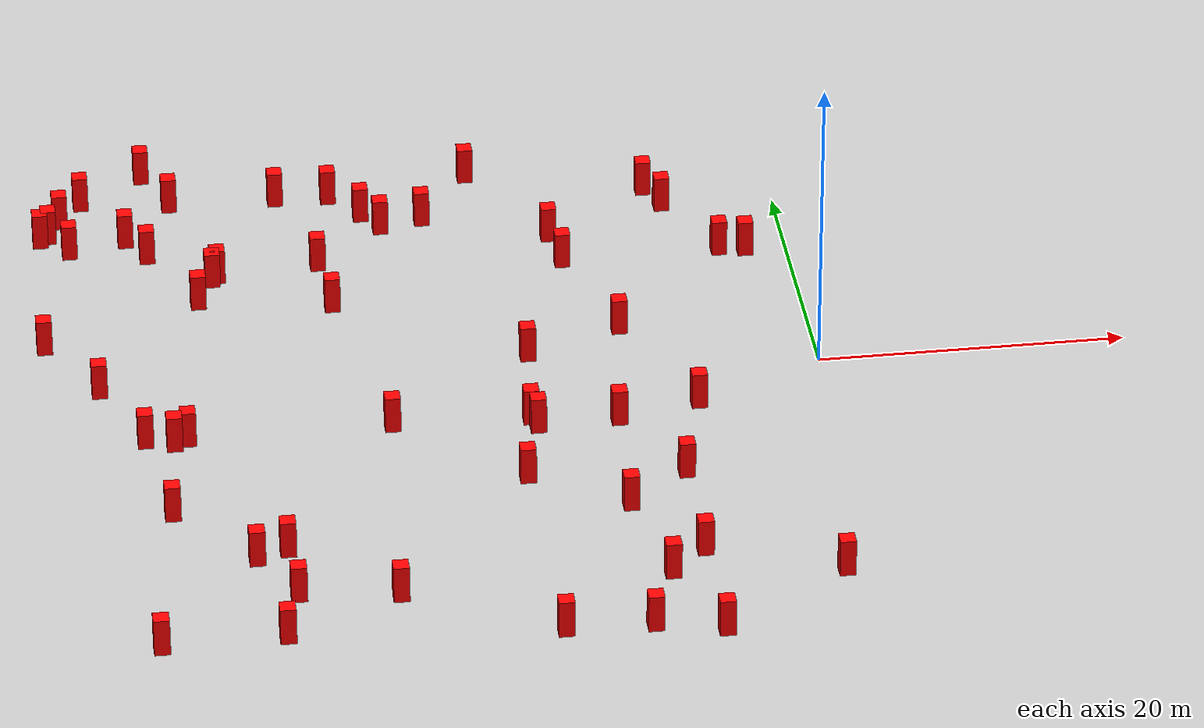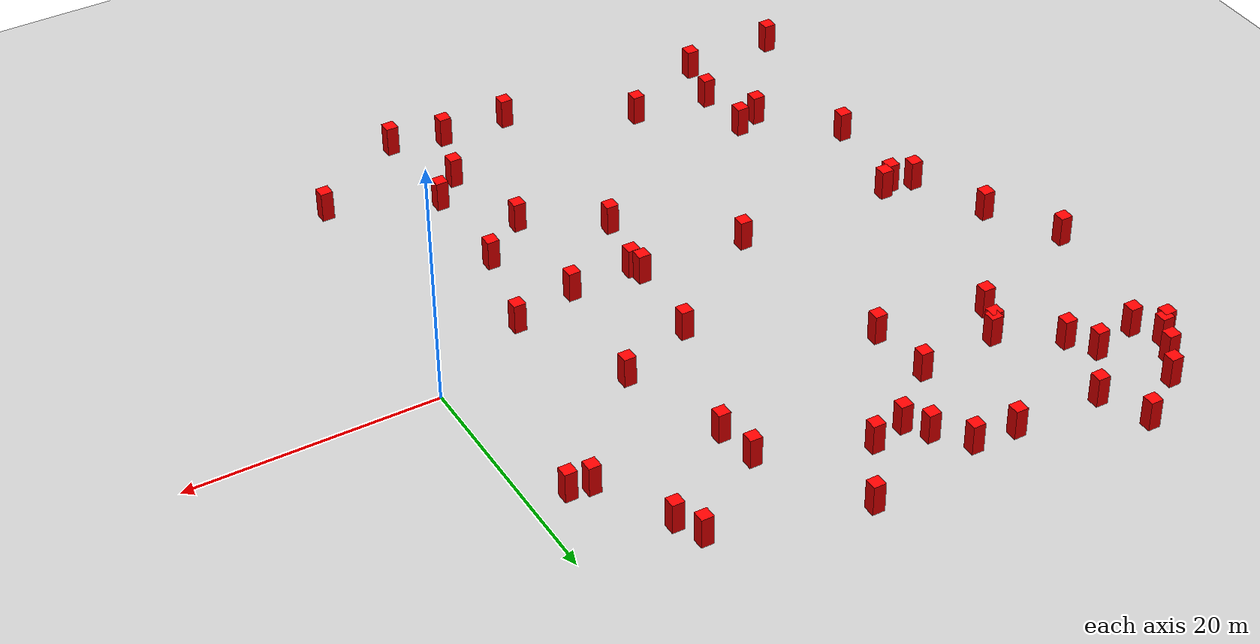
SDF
<sdf version="1.7">
 <world name="default">
  <model name="ground_plane">
   <static>1</static>
   <link name="link">
    <collision name="collision">
     <geometry><plane><normal>0 0 1</normal><size>100 100</size></plane></geometry>
     <surface>
      <contact><collide_bitmask>65535</collide_bitmask></contact>
      <friction><ode><mu>100</mu><mu2>50</mu2></ode></friction>
     </surface>
    </collision>
    <visual name="visual">
     <cast_shadows>0</cast_shadows>
     <geometry><plane><normal>0 0 1</normal><size>100 100</size></plane></geometry>
     <material>
      <script><uri>file://media/materials/scripts/gazebo.material</uri><name>Gazebo/Grey</name></script>
     </material>
    </visual>
   </link>
  </model>
  <model name="box1">
   <static>1</static>
   <link name="link">
    <inertial>
     <mass>1</mass>
     <inertia><ixx>0.083</ixx><ixy>0</ixy><ixz>0</ixz><iyy>0.083</iyy><iyz>0</iyz><izz>0.083</izz></inertia>
    </inertial>
    <collision name="collision"><geometry><box><size>1 1 2.5</size></box></geometry></collision>
    <visual name="visual">
     <geometry><box><size>1 1 2.5</size></box></geometry>
     <material>
      <ambient>1 0 0 1</ambient>
      <diffuse>1 0 0 1</diffuse>
      <specular>0.1 0.1 0.1 1</specular>
      <emissive>0 0 0 0</emissive>
     </material>
    </visual>
   </link>
   <pose>-49.0814 20.8101 1.25 0 -0 0</pose>
  </model>
  <model name="box2">
   <static>1</static>
   <link name="link">
    <inertial>
     <mass>1</mass>
     <inertia><ixx>0.083</ixx><ixy>0</ixy><ixz>0</ixz><iyy>0.083</iyy><iyz>0</iyz><izz>0.083</izz></inertia>
    </inertial>
    <collision name="collision"><geometry><box><size>1 1 2.5</size></box></geometry></collision>
    <visual name="visual">
     <geometry><box><size>1 1 2.5</size></box></geometry>
     <material>
      <ambient>1 0 0 1</ambient>
      <diffuse>1 0 0 1</diffuse>
      <specular>0.1 0.1 0.1 1</specular>
      <emissive>0 0 0 0</emissive>
     </material>
    </visual>
   </link>
   <pose>-41.8557 28.1957 1.25 0 -0 0</pose>
  </model>
  <model name="box4">
   <static>1</static>
   <link name="link">
    <inertial>
     <mass>1</mass>
     <inertia><ixx>0.083</ixx><ixy>0</ixy><ixz>0</ixz><iyy>0.083</iyy><iyz>0</iyz><izz>0.083</izz></inertia>
    </inertial>
    <collision name="collision"><geometry><box><size>1 1 2.5</size></box></geometry></collision>
    <visual name="visual">
     <geometry><box><size>1 1 2.5</size></box></geometry>
     <material>
      <ambient>1 0 0 1</ambient>
      <diffuse>1 0 0 1</diffuse>
      <specular>0.1 0.1 0.1 1</specular>
      <emissive>0 0 0 0</emissive>
     </material>
    </visual>
   </link>
   <pose>-20.4027 -11.4088 1.25 0 -0 0</pose>
  </model>
  <model name="box7">
   <static>1</static>
   <link name="link">
    <inertial>
     <mass>1</mass>
     <inertia><ixx>0.083</ixx><ixy>0</ixy><ixz>0</ixz><iyy>0.083</iyy><iyz>0</iyz><izz>0.083</izz></inertia>
    </inertial>
    <collision name="collision"><geometry><box><size>1 1 2.5</size></box></geometry></collision>
    <visual name="visual">
     <geometry><box><size>1 1 2.5</size></box></geometry>
     <material>
      <ambient>1 0 0 1</ambient>
      <diffuse>1 0 0 1</diffuse>
      <specular>0.1 0.1 0.1 1</specular>
      <emissive>0 0 0 0</emissive>
     </material>
    </visual>
   </link>
   <pose>-40.265 24.2819 1.25 0 -0 0</pose>
  </model>
  <model name="box10">
   <static>1</static>
   <link name="link">
    <inertial>
     <mass>1</mass>
     <inertia><ixx>0.083</ixx><ixy>0</ixy><ixz>0</ixz><iyy>0.083</iyy><iyz>0</iyz><izz>0.083</izz></inertia>
    </inertial>
    <collision name="collision"><geometry><box><size>1 1 2.5</size></box></geometry></collision>
    <visual name="visual">
     <geometry><box><size>1 1 2.5</size></box></geometry>
     <material>
      <ambient>1 0 0 1</ambient>
      <diffuse>1 0 0 1</diffuse>
      <specular>0.1 0.1 0.1 1</specular>
      <emissive>0 0 0 0</emissive>
     </material>
    </visual>
   </link>
   <pose>-47.2471 19.1602 1.25 0 -0 0</pose>
  </model>
  <model name="box11">
   <static>1</static>
   <link name="link">
    <inertial>
     <mass>1</mass>
     <inertia><ixx>0.083</ixx><ixy>0</ixy><ixz>0</ixz><iyy>0.083</iyy><iyz>0</iyz><izz>0.083</izz></inertia>
    </inertial>
    <collision name="collision"><geometry><box><size>1 1 2.5</size></box></geometry></collision>
    <visual name="visual">
     <geometry><box><size>1 1 2.5</size></box></geometry>
     <material>
      <ambient>1 0 0 1</ambient>
      <diffuse>1 0 0 1</diffuse>
      <specular>0.1 0.1 0.1 1</specular>
      <emissive>0 0 0 0</emissive>
     </material>
    </visual>
   </link>
   <pose>-10.4361 -29.6285 1.25 0 -0 0</pose>
  </model>
  <model name="box12">
   <static>1</static>
   <link name="link">
    <inertial>
     <mass>1</mass>
     <inertia><ixx>0.083</ixx><ixy>0</ixy><ixz>0</ixz><iyy>0.083</iyy><iyz>0</iyz><izz>0.083</izz></inertia>
    </inertial>
    <collision name="collision"><geometry><box><size>1 1 2.5</size></box></geometry></collision>
    <visual name="visual">
     <geometry><box><size>1 1 2.5</size></box></geometry>
     <material>
      <ambient>1 0 0 1</ambient>
      <diffuse>1 0 0 1</diffuse>
      <specular>0.1 0.1 0.1 1</specular>
      <emissive>0 0 0 0</emissive>
     </material>
    </visual>
   </link>
   <pose>-49.6268 7.5907 1.25 0 -0 0</pose>
  </model>
  <model name="box13">
   <static>1</static>
   <link name="link">
    <inertial>
     <mass>1</mass>
     <inertia><ixx>0.083</ixx><ixy>0</ixy><ixz>0</ixz><iyy>0.083</iyy><iyz>0</iyz><izz>0.083</izz></inertia>
    </inertial>
    <collision name="collision"><geometry><box><size>1 1 2.5</size></box></geometry></collision>
    <visual name="visual">
     <geometry><box><size>1 1 2.5</size></box></geometry>
     <material>
      <ambient>1 0 0 1</ambient>
      <diffuse>1 0 0 1</diffuse>
      <specular>0.1 0.1 0.1 1</specular>
      <emissive>0 0 0 0</emissive>
     </material>
    </visual>
   </link>
   <pose>-33.1486 24.1292 1.25 0 -0 0</pose>
  </model>
  <model name="box15">
   <static>1</static>
   <link name="link">
    <inertial>
     <mass>1</mass>
     <inertia><ixx>0.083</ixx><ixy>0</ixy><ixz>0</ixz><iyy>0.083</iyy><iyz>0</iyz><izz>0.083</izz></inertia>
    </inertial>
    <collision name="collision"><geometry><box><size>1 1 2.5</size></box></geometry></collision>
    <visual name="visual">
     <geometry><box><size>1 1 2.5</size></box></geometry>
     <material>
      <ambient>1 0 0 1</ambient>
      <diffuse>1 0 0 1</diffuse>
      <specular>0.1 0.1 0.1 1</specular>
      <emissive>0 0 0 0</emissive>
     </material>
    </visual>
   </link>
   <pose>-43.4733 20.1149 1.25 0 -0 0</pose>
  </model>
  <model name="box17">
   <static>1</static>
   <link name="link">
    <inertial>
     <mass>1</mass>
     <inertia><ixx>0.083</ixx><ixy>0</ixy><ixz>0</ixz><iyy>0.083</iyy><iyz>0</iyz><izz>0.083</izz></inertia>
    </inertial>
    <collision name="collision"><geometry><box><size>1 1 2.5</size></box></geometry></collision>
    <visual name="visual">
     <geometry><box><size>1 1 2.5</size></box></geometry>
     <material>
      <ambient>1 0 0 1</ambient>
      <diffuse>1 0 0 1</diffuse>
      <specular>0.1 0.1 0.1 1</specular>
      <emissive>0 0 0 0</emissive>
     </material>
    </visual>
   </link>
   <pose>-14.6766 -28.6023 1.25 0 -0 0</pose>
  </model>
  <model name="box18">
   <static>1</static>
   <link name="link">
    <inertial>
     <mass>1</mass>
     <inertia><ixx>0.083</ixx><ixy>0</ixy><ixz>0</ixz><iyy>0.083</iyy><iyz>0</iyz><izz>0.083</izz></inertia>
    </inertial>
    <collision name="collision"><geometry><box><size>1 1 2.5</size></box></geometry></collision>
    <visual name="visual">
     <geometry><box><size>1 1 2.5</size></box></geometry>
     <material>
      <ambient>1 0 0 1</ambient>
      <diffuse>1 0 0 1</diffuse>
      <specular>0.1 0.1 0.1 1</specular>
      <emissive>0 0 0 0</emissive>
     </material>
    </visual>
   </link>
   <pose>-7.52814 20.1668 1.25 0 -0 0</pose>
  </model>
  <model name="box19">
   <static>1</static>
   <link name="link">
    <inertial>
     <mass>1</mass>
     <inertia><ixx>0.083</ixx><ixy>0</ixy><ixz>0</ixz><iyy>0.083</iyy><iyz>0</iyz><izz>0.083</izz></inertia>
    </inertial>
    <collision name="collision"><geometry><box><size>1 1 2.5</size></box></geometry></collision>
    <visual name="visual">
     <geometry><box><size>1 1 2.5</size></box></geometry>
     <material>
      <ambient>1 0 0 1</ambient>
      <diffuse>1 0 0 1</diffuse>
      <specular>0.1 0.1 0.1 1</specular>
      <emissive>0 0 0 0</emissive>
     </material>
    </visual>
   </link>
   <pose>-20.1599 -28.4555 1.25 0 -0 0</pose>
  </model>
  <model name="box20">
   <static>1</static>
   <link name="link">
    <inertial>
     <mass>1</mass>
     <inertia><ixx>0.083</ixx><ixy>0</ixy><ixz>0</ixz><iyy>0.083</iyy><iyz>0</iyz><izz>0.083</izz></inertia>
    </inertial>
    <collision name="collision"><geometry><box><size>1 1 2.5</size></box></geometry></collision>
    <visual name="visual">
     <geometry><box><size>1 1 2.5</size></box></geometry>
     <material>
      <ambient>1 0 0 1</ambient>
      <diffuse>1 0 0 1</diffuse>
      <specular>0.1 0.1 0.1 1</specular>
      <emissive>0 0 0 0</emissive>
     </material>
    </visual>
   </link>
   <pose>-48.5085 21.2595 1.25 0 -0 0</pose>
  </model>
  <model name="box22">
   <static>1</static>
   <link name="link">
    <inertial>
     <mass>1</mass>
     <inertia><ixx>0.083</ixx><ixy>0</ixy><ixz>0</ixz><iyy>0.083</iyy><iyz>0</iyz><izz>0.083</izz></inertia>
    </inertial>
    <collision name="collision"><geometry><box><size>1 1 2.5</size></box></geometry></collision>
    <visual name="visual">
     <geometry><box><size>1 1 2.5</size></box></geometry>
     <material>
      <ambient>1 0 0 1</ambient>
      <diffuse>1 0 0 1</diffuse>
      <specular>0.1 0.1 0.1 1</specular>
      <emissive>0 0 0 0</emissive>
     </material>
    </visual>
   </link>
   <pose>-15.5201 17.2574 1.25 0 -0 0</pose>
  </model>
  <model name="box23">
   <static>1</static>
   <link name="link">
    <inertial>
     <mass>1</mass>
     <inertia><ixx>0.083</ixx><ixy>0</ixy><ixz>0</ixz><iyy>0.083</iyy><iyz>0</iyz><izz>0.083</izz></inertia>
    </inertial>
    <collision name="collision"><geometry><box><size>1 1 2.5</size></box></geometry></collision>
    <visual name="visual">
     <geometry><box><size>1 1 2.5</size></box></geometry>
     <material>
      <ambient>1 0 0 1</ambient>
      <diffuse>1 0 0 1</diffuse>
      <specular>0.1 0.1 0.1 1</specular>
      <emissive>0 0 0 0</emissive>
     </material>
    </visual>
   </link>
   <pose>-47.6507 23.0816 1.25 0 -0 0</pose>
  </model>
  <model name="box24">
   <static>1</static>
   <link name="link">
    <inertial>
     <mass>1</mass>
     <inertia><ixx>0.083</ixx><ixy>0</ixy><ixz>0</ixz><iyy>0.083</iyy><iyz>0</iyz><izz>0.083</izz></inertia>
    </inertial>
    <collision name="collision"><geometry><box><size>1 1 2.5</size></box></geometry></collision>
    <visual name="visual">
     <geometry><box><size>1 1 2.5</size></box></geometry>
     <material>
      <ambient>1 0 0 1</ambient>
      <diffuse>1 0 0 1</diffuse>
      <specular>0.1 0.1 0.1 1</specular>
      <emissive>0 0 0 0</emissive>
     </material>
    </visual>
   </link>
   <pose>-18.6832 2.72705 1.25 0 -0 0</pose>
  </model>
  <model name="box27">
   <static>1</static>
   <link name="link">
    <inertial>
     <mass>1</mass>
     <inertia><ixx>0.083</ixx><ixy>0</ixy><ixz>0</ixz><iyy>0.083</iyy><iyz>0</iyz><izz>0.083</izz></inertia>
    </inertial>
    <collision name="collision"><geometry><box><size>1 1 2.5</size></box></geometry></collision>
    <visual name="visual">
     <geometry><box><size>1 1 2.5</size></box></geometry>
     <material>
      <ambient>1 0 0 1</ambient>
      <diffuse>1 0 0 1</diffuse>
      <specular>0.1 0.1 0.1 1</specular>
      <emissive>0 0 0 0</emissive>
     </material>
    </visual>
   </link>
   <pose>-15.0135 13.8962 1.25 0 -0 0</pose>
  </model>
  <model name="box29">
   <static>1</static>
   <link name="link">
    <inertial>
     <mass>1</mass>
     <inertia><ixx>0.083</ixx><ixy>0</ixy><ixz>0</ixz><iyy>0.083</iyy><iyz>0</iyz><izz>0.083</izz></inertia>
    </inertial>
    <collision name="collision"><geometry><box><size>1 1 2.5</size></box></geometry></collision>
    <visual name="visual">
     <geometry><box><size>1 1 2.5</size></box></geometry>
     <material>
      <ambient>1 0 0 1</ambient>
      <diffuse>1 0 0 1</diffuse>
      <specular>0.1 0.1 0.1 1</specular>
      <emissive>0 0 0 0</emissive>
     </material>
    </visual>
   </link>
   <pose>-46.1264 25.2185 1.25 0 -0 0</pose>
  </model>
  <model name="box33">
   <static>1</static>
   <link name="link">
    <inertial>
     <mass>1</mass>
     <inertia><ixx>0.083</ixx><ixy>0</ixy><ixz>0</ixz><iyy>0.083</iyy><iyz>0</iyz><izz>0.083</izz></inertia>
    </inertial>
    <collision name="collision"><geometry><box><size>1 1 2.5</size></box></geometry></collision>
    <visual name="visual">
     <geometry><box><size>1 1 2.5</size></box></geometry>
     <material>
      <ambient>1 0 0 1</ambient>
      <diffuse>1 0 0 1</diffuse>
      <specular>0.1 0.1 0.1 1</specular>
      <emissive>0 0 0 0</emissive>
     </material>
    </visual>
   </link>
   <pose>-37.787 14.8567 1.25 0 -0 0</pose>
  </model>
  <model name="box34">
   <static>1</static>
   <link name="link">
    <inertial>
     <mass>1</mass>
     <inertia><ixx>0.083</ixx><ixy>0</ixy><ixz>0</ixz><iyy>0.083</iyy><iyz>0</iyz><izz>0.083</izz></inertia>
    </inertial>
    <collision name="collision"><geometry><box><size>1 1 2.5</size></box></geometry></collision>
    <visual name="visual">
     <geometry><box><size>1 1 2.5</size></box></geometry>
     <material>
      <ambient>1 0 0 1</ambient>
      <diffuse>1 0 0 1</diffuse>
      <specular>0.1 0.1 0.1 1</specular>
      <emissive>0 0 0 0</emissive>
     </material>
    </visual>
   </link>
   <pose>-31.0824 15.5782 1.25 0 -0 0</pose>
  </model>
  <model name="box35">
   <static>1</static>
   <link name="link">
    <inertial>
     <mass>1</mass>
     <inertia><ixx>0.083</ixx><ixy>0</ixy><ixz>0</ixz><iyy>0.083</iyy><iyz>0</iyz><izz>0.083</izz></inertia>
    </inertial>
    <collision name="collision"><geometry><box><size>1 1 2.5</size></box></geometry></collision>
    <visual name="visual">
     <geometry><box><size>1 1 2.5</size></box></geometry>
     <material>
      <ambient>1 0 0 1</ambient>
      <diffuse>1 0 0 1</diffuse>
      <specular>0.1 0.1 0.1 1</specular>
      <emissive>0 0 0 0</emissive>
     </material>
    </visual>
   </link>
   <pose>-39.2947 11.8075 1.25 0 -0 0</pose>
  </model>
  <model name="box39">
   <static>1</static>
   <link name="link">
    <inertial>
     <mass>1</mass>
     <inertia><ixx>0.083</ixx><ixy>0</ixy><ixz>0</ixz><iyy>0.083</iyy><iyz>0</iyz><izz>0.083</izz></inertia>
    </inertial>
    <collision name="collision"><geometry><box><size>1 1 2.5</size></box></geometry></collision>
    <visual name="visual">
     <geometry><box><size>1 1 2.5</size></box></geometry>
     <material>
      <ambient>1 0 0 1</ambient>
      <diffuse>1 0 0 1</diffuse>
      <specular>0.1 0.1 0.1 1</specular>
      <emissive>0 0 0 0</emissive>
     </material>
    </visual>
   </link>
   <pose>-29.7186 -23.4482 1.25 0 -0 0</pose>
  </model>
  <model name="box41">
   <static>1</static>
   <link name="link">
    <inertial>
     <mass>1</mass>
     <inertia><ixx>0.083</ixx><ixy>0</ixy><ixz>0</ixz><iyy>0.083</iyy><iyz>0</iyz><izz>0.083</izz></inertia>
    </inertial>
    <collision name="collision"><geometry><box><size>1 1 2.5</size></box></geometry></collision>
    <visual name="visual">
     <geometry><box><size>1 1 2.5</size></box></geometry>
     <material>
      <ambient>1 0 0 1</ambient>
      <diffuse>1 0 0 1</diffuse>
      <specular>0.1 0.1 0.1 1</specular>
      <emissive>0 0 0 0</emissive>
     </material>
    </visual>
   </link>
   <pose>-29.6103 23.9536 1.25 0 -0 0</pose>
  </model>
  <model name="box42">
   <static>1</static>
   <link name="link">
    <inertial>
     <mass>1</mass>
     <inertia><ixx>0.083</ixx><ixy>0</ixy><ixz>0</ixz><iyy>0.083</iyy><iyz>0</iyz><izz>0.083</izz></inertia>
    </inertial>
    <collision name="collision"><geometry><box><size>1 1 2.5</size></box></geometry></collision>
    <visual name="visual">
     <geometry><box><size>1 1 2.5</size></box></geometry>
     <material>
      <ambient>1 0 0 1</ambient>
      <diffuse>1 0 0 1</diffuse>
      <specular>0.1 0.1 0.1 1</specular>
      <emissive>0 0 0 0</emissive>
     </material>
    </visual>
   </link>
   <pose>-30.6275 10.3452 1.25 0 -0 0</pose>
  </model>
  <model name="box43">
   <static>1</static>
   <link name="link">
    <inertial>
     <mass>1</mass>
     <inertia><ixx>0.083</ixx><ixy>0</ixy><ixz>0</ixz><iyy>0.083</iyy><iyz>0</iyz><izz>0.083</izz></inertia>
    </inertial>
    <collision name="collision"><geometry><box><size>1 1 2.5</size></box></geometry></collision>
    <visual name="visual">
     <geometry><box><size>1 1 2.5</size></box></geometry>
     <material>
      <ambient>1 0 0 1</ambient>
      <diffuse>1 0 0 1</diffuse>
      <specular>0.1 0.1 0.1 1</specular>
      <emissive>0 0 0 0</emissive>
     </material>
    </visual>
   </link>
   <pose>-20.1712 25.5491 1.25 0 -0 0</pose>
  </model>
  <model name="box44">
   <static>1</static>
   <link name="link">
    <inertial>
     <mass>1</mass>
     <inertia><ixx>0.083</ixx><ixy>0</ixy><ixz>0</ixz><iyy>0.083</iyy><iyz>0</iyz><izz>0.083</izz></inertia>
    </inertial>
    <collision name="collision"><geometry><box><size>1 1 2.5</size></box></geometry></collision>
    <visual name="visual">
     <geometry><box><size>1 1 2.5</size></box></geometry>
     <material>
      <ambient>1 0 0 1</ambient>
      <diffuse>1 0 0 1</diffuse>
      <specular>0.1 0.1 0.1 1</specular>
      <emissive>0 0 0 0</emissive>
     </material>
    </visual>
   </link>
   <pose>-2.79529 13.8154 1.25 0 -0 0</pose>
  </model>
  <model name="box46">
   <static>1</static>
   <link name="link">
    <inertial>
     <mass>1</mass>
     <inertia><ixx>0.083</ixx><ixy>0</ixy><ixz>0</ixz><iyy>0.083</iyy><iyz>0</iyz><izz>0.083</izz></inertia>
    </inertial>
    <collision name="collision"><geometry><box><size>1 1 2.5</size></box></geometry></collision>
    <visual name="visual">
     <geometry><box><size>1 1 2.5</size></box></geometry>
     <material>
      <ambient>1 0 0 1</ambient>
      <diffuse>1 0 0 1</diffuse>
      <specular>0.1 0.1 0.1 1</specular>
      <emissive>0 0 0 0</emissive>
     </material>
    </visual>
   </link>
   <pose>-26.5055 19.658 1.25 0 -0 0</pose>
  </model>
  <model name="box47">
   <static>1</static>
   <link name="link">
    <inertial>
     <mass>1</mass>
     <inertia><ixx>0.083</ixx><ixy>0</ixy><ixz>0</ixz><iyy>0.083</iyy><iyz>0</iyz><izz>0.083</izz></inertia>
    </inertial>
    <collision name="collision"><geometry><box><size>1 1 2.5</size></box></geometry></collision>
    <visual name="visual">
     <geometry><box><size>1 1 2.5</size></box></geometry>
     <material>
      <ambient>1 0 0 1</ambient>
      <diffuse>1 0 0 1</diffuse>
      <specular>0.1 0.1 0.1 1</specular>
      <emissive>0 0 0 0</emissive>
     </material>
    </visual>
   </link>
   <pose>-13.8101 -5.54181 1.25 0 -0 0</pose>
  </model>
  <model name="box49">
   <static>1</static>
   <link name="link">
    <inertial>
     <mass>1</mass>
     <inertia><ixx>0.083</ixx><ixy>0</ixy><ixz>0</ixz><iyy>0.083</iyy><iyz>0</iyz><izz>0.083</izz></inertia>
    </inertial>
    <collision name="collision"><geometry><box><size>1 1 2.5</size></box></geometry></collision>
    <visual name="visual">
     <geometry><box><size>1 1 2.5</size></box></geometry>
     <material>
      <ambient>1 0 0 1</ambient>
      <diffuse>1 0 0 1</diffuse>
      <specular>0.1 0.1 0.1 1</specular>
      <emissive>0 0 0 0</emissive>
     </material>
    </visual>
   </link>
   <pose>-35.9334 -22.6368 1.25 0 -0 0</pose>
  </model>
  <model name="box51">
   <static>1</static>
   <link name="link">
    <inertial>
     <mass>1</mass>
     <inertia><ixx>0.083</ixx><ixy>0</ixy><ixz>0</ixz><iyy>0.083</iyy><iyz>0</iyz><izz>0.083</izz></inertia>
    </inertial>
    <collision name="collision"><geometry><box><size>1 1 2.5</size></box></geometry></collision>
    <visual name="visual">
     <geometry><box><size>1 1 2.5</size></box></geometry>
     <material>
      <ambient>1 0 0 1</ambient>
      <diffuse>1 0 0 1</diffuse>
      <specular>0.1 0.1 0.1 1</specular>
      <emissive>0 0 0 0</emissive>
     </material>
    </visual>
   </link>
   <pose>-38.1168 -18.4145 1.25 0 -0 0</pose>
  </model>
  <model name="box54">
   <static>1</static>
   <link name="link">
    <inertial>
     <mass>1</mass>
     <inertia><ixx>0.083</ixx><ixy>0</ixy><ixz>0</ixz><iyy>0.083</iyy><iyz>0</iyz><izz>0.083</izz></inertia>
    </inertial>
    <collision name="collision"><geometry><box><size>1 1 2.5</size></box></geometry></collision>
    <visual name="visual">
     <geometry><box><size>1 1 2.5</size></box></geometry>
     <material>
      <ambient>1 0 0 1</ambient>
      <diffuse>1 0 0 1</diffuse>
      <specular>0.1 0.1 0.1 1</specular>
      <emissive>0 0 0 0</emissive>
     </material>
    </visual>
   </link>
   <pose>-10.3966 -12.0907 1.25 0 -0 0</pose>
  </model>
  <model name="box55">
   <static>1</static>
   <link name="link">
    <inertial>
     <mass>1</mass>
     <inertia><ixx>0.083</ixx><ixy>0</ixy><ixz>0</ixz><iyy>0.083</iyy><iyz>0</iyz><izz>0.083</izz></inertia>
    </inertial>
    <collision name="collision"><geometry><box><size>1 1 2.5</size></box></geometry></collision>
    <visual name="visual">
     <geometry><box><size>1 1 2.5</size></box></geometry>
     <material>
      <ambient>1 0 0 1</ambient>
      <diffuse>1 0 0 1</diffuse>
      <specular>0.1 0.1 0.1 1</specular>
      <emissive>0 0 0 0</emissive>
     </material>
    </visual>
   </link>
   <pose>-19.0479 -5.76204 1.25 0 -0 0</pose>
  </model>
  <model name="box57">
   <static>1</static>
   <link name="link">
    <inertial>
     <mass>1</mass>
     <inertia><ixx>0.083</ixx><ixy>0</ixy><ixz>0</ixz><iyy>0.083</iyy><iyz>0</iyz><izz>0.083</izz></inertia>
    </inertial>
    <collision name="collision"><geometry><box><size>1 1 2.5</size></box></geometry></collision>
    <visual name="visual">
     <geometry><box><size>1 1 2.5</size></box></geometry>
     <material>
      <ambient>1 0 0 1</ambient>
      <diffuse>1 0 0 1</diffuse>
      <specular>0.1 0.1 0.1 1</specular>
      <emissive>0 0 0 0</emissive>
     </material>
    </visual>
   </link>
   <pose>-28.2291 -4.43584 1.25 0 -0 0</pose>
  </model>
  <model name="box58">
   <static>1</static>
   <link name="link">
    <inertial>
     <mass>1</mass>
     <inertia><ixx>0.083</ixx><ixy>0</ixy><ixz>0</ixz><iyy>0.083</iyy><iyz>0</iyz><izz>0.083</izz></inertia>
    </inertial>
    <collision name="collision"><geometry><box><size>1 1 2.5</size></box></geometry></collision>
    <visual name="visual">
     <geometry><box><size>1 1 2.5</size></box></geometry>
     <material>
      <ambient>1 0 0 1</ambient>
      <diffuse>1 0 0 1</diffuse>
      <specular>0.1 0.1 0.1 1</specular>
      <emissive>0 0 0 0</emissive>
     </material>
    </visual>
   </link>
   <pose>-12.8309 -23.1214 1.25 0 -0 0</pose>
  </model>
  <model name="box64">
   <static>1</static>
   <link name="link">
    <inertial>
     <mass>1</mass>
     <inertia><ixx>0.083</ixx><ixy>0</ixy><ixz>0</ixz><iyy>0.083</iyy><iyz>0</iyz><izz>0.083</izz></inertia>
    </inertial>
    <collision name="collision"><geometry><box><size>1 1 2.5</size></box></geometry></collision>
    <visual name="visual">
     <geometry><box><size>1 1 2.5</size></box></geometry>
     <material>
      <ambient>1 0 0 1</ambient>
      <diffuse>1 0 0 1</diffuse>
      <specular>0.1 0.1 0.1 1</specular>
      <emissive>0 0 0 0</emissive>
     </material>
    </visual>
   </link>
   <pose>-12.3783 5.24012 1.25 0 -0 0</pose>
  </model>
  <model name="box67">
   <static>1</static>
   <link name="link">
    <inertial>
     <mass>1</mass>
     <inertia><ixx>0.083</ixx><ixy>0</ixy><ixz>0</ixz><iyy>0.083</iyy><iyz>0</iyz><izz>0.083</izz></inertia>
    </inertial>
    <collision name="collision"><geometry><box><size>1 1 2.5</size></box></geometry></collision>
    <visual name="visual">
     <geometry><box><size>1 1 2.5</size></box></geometry>
     <material>
      <ambient>1 0 0 1</ambient>
      <diffuse>1 0 0 1</diffuse>
      <specular>0.1 0.1 0.1 1</specular>
      <emissive>0 0 0 0</emissive>
     </material>
    </visual>
   </link>
   <pose>-8.47557 22.3762 1.25 0 -0 0</pose>
  </model>
  <model name="box70">
   <static>1</static>
   <link name="link">
    <inertial>
     <mass>1</mass>
     <inertia><ixx>0.083</ixx><ixy>0</ixy><ixz>0</ixz><iyy>0.083</iyy><iyz>0</iyz><izz>0.083</izz></inertia>
    </inertial>
    <collision name="collision"><geometry><box><size>1 1 2.5</size></box></geometry></collision>
    <visual name="visual">
     <geometry><box><size>1 1 2.5</size></box></geometry>
     <material>
      <ambient>1 0 0 1</ambient>
      <diffuse>1 0 0 1</diffuse>
      <specular>0.1 0.1 0.1 1</specular>
      <emissive>0 0 0 0</emissive>
     </material>
    </visual>
   </link>
   <pose>-42.1673 -4.8967 1.25 0 -0 0</pose>
  </model>
  <model name="box71">
   <static>1</static>
   <link name="link">
    <inertial>
     <mass>1</mass>
     <inertia><ixx>0.083</ixx><ixy>0</ixy><ixz>0</ixz><iyy>0.083</iyy><iyz>0</iyz><izz>0.083</izz></inertia>
    </inertial>
    <collision name="collision"><geometry><box><size>1 1 2.5</size></box></geometry></collision>
    <visual name="visual">
     <geometry><box><size>1 1 2.5</size></box></geometry>
     <material>
      <ambient>1 0 0 1</ambient>
      <diffuse>1 0 0 1</diffuse>
      <specular>0.1 0.1 0.1 1</specular>
      <emissive>0 0 0 0</emissive>
     </material>
    </visual>
   </link>
   <pose>-23.6666 20.3659 1.25 0 -0 0</pose>
  </model>
  <model name="box72">
   <static>1</static>
   <link name="link">
    <inertial>
     <mass>1</mass>
     <inertia><ixx>0.083</ixx><ixy>0</ixy><ixz>0</ixz><iyy>0.083</iyy><iyz>0</iyz><izz>0.083</izz></inertia>
    </inertial>
    <collision name="collision"><geometry><box><size>1 1 2.5</size></box></geometry></collision>
    <visual name="visual">
     <geometry><box><size>1 1 2.5</size></box></geometry>
     <material>
      <ambient>1 0 0 1</ambient>
      <diffuse>1 0 0 1</diffuse>
      <specular>0.1 0.1 0.1 1</specular>
      <emissive>0 0 0 0</emissive>
     </material>
    </visual>
   </link>
   <pose>-8.48039 -4.22857 1.25 0 -0 0</pose>
  </model>
  <model name="box74">
   <static>1</static>
   <link name="link">
    <inertial>
     <mass>1</mass>
     <inertia><ixx>0.083</ixx><ixy>0</ixy><ixz>0</ixz><iyy>0.083</iyy><iyz>0</iyz><izz>0.083</izz></inertia>
    </inertial>
    <collision name="collision"><geometry><box><size>1 1 2.5</size></box></geometry></collision>
    <visual name="visual">
     <geometry><box><size>1 1 2.5</size></box></geometry>
     <material>
      <ambient>1 0 0 1</ambient>
      <diffuse>1 0 0 1</diffuse>
      <specular>0.1 0.1 0.1 1</specular>
      <emissive>0 0 0 0</emissive>
     </material>
    </visual>
   </link>
   <pose>-44.701 -27.1708 1.25 0 -0 0</pose>
  </model>
  <model name="box75">
   <static>1</static>
   <link name="link">
    <inertial>
     <mass>1</mass>
     <inertia><ixx>0.083</ixx><ixy>0</ixy><ixz>0</ixz><iyy>0.083</iyy><iyz>0</iyz><izz>0.083</izz></inertia>
    </inertial>
    <collision name="collision"><geometry><box><size>1 1 2.5</size></box></geometry></collision>
    <visual name="visual">
     <geometry><box><size>1 1 2.5</size></box></geometry>
     <material>
      <ambient>1 0 0 1</ambient>
      <diffuse>1 0 0 1</diffuse>
      <specular>0.1 0.1 0.1 1</specular>
      <emissive>0 0 0 0</emissive>
     </material>
    </visual>
   </link>
   <pose>-37.006 -27.0063 1.25 0 -0 0</pose>
  </model>
  <model name="box76">
   <static>1</static>
   <link name="link">
    <inertial>
     <mass>1</mass>
     <inertia><ixx>0.083</ixx><ixy>0</ixy><ixz>0</ixz><iyy>0.083</iyy><iyz>0</iyz><izz>0.083</izz></inertia>
    </inertial>
    <collision name="collision"><geometry><box><size>1 1 2.5</size></box></geometry></collision>
    <visual name="visual">
     <geometry><box><size>1 1 2.5</size></box></geometry>
     <material>
      <ambient>1 0 0 1</ambient>
      <diffuse>1 0 0 1</diffuse>
      <specular>0.1 0.1 0.1 1</specular>
      <emissive>0 0 0 0</emissive>
     </material>
    </visual>
   </link>
   <pose>-2.16236 -24.1872 1.25 0 -0 0</pose>
  </model>
  <model name="box77">
   <static>1</static>
   <link name="link">
    <inertial>
     <mass>1</mass>
     <inertia><ixx>0.083</ixx><ixy>0</ixy><ixz>0</ixz><iyy>0.083</iyy><iyz>0</iyz><izz>0.083</izz></inertia>
    </inertial>
    <collision name="collision"><geometry><box><size>1 1 2.5</size></box></geometry></collision>
    <visual name="visual">
     <geometry><box><size>1 1 2.5</size></box></geometry>
     <material>
      <ambient>1 0 0 1</ambient>
      <diffuse>1 0 0 1</diffuse>
      <specular>0.1 0.1 0.1 1</specular>
      <emissive>0 0 0 0</emissive>
     </material>
    </visual>
   </link>
   <pose>-42.8991 -12.8019 1.25 0 -0 0</pose>
  </model>
  <model name="box78">
   <static>1</static>
   <link name="link">
    <inertial>
     <mass>1</mass>
     <inertia><ixx>0.083</ixx><ixy>0</ixy><ixz>0</ixz><iyy>0.083</iyy><iyz>0</iyz><izz>0.083</izz></inertia>
    </inertial>
    <collision name="collision"><geometry><box><size>1 1 2.5</size></box></geometry></collision>
    <visual name="visual">
     <geometry><box><size>1 1 2.5</size></box></geometry>
     <material>
      <ambient>1 0 0 1</ambient>
      <diffuse>1 0 0 1</diffuse>
      <specular>0.1 0.1 0.1 1</specular>
      <emissive>0 0 0 0</emissive>
     </material>
    </visual>
   </link>
   <pose>-41.2681 -4.43739 1.25 0 -0 0</pose>
  </model>
  <model name="box79">
   <static>1</static>
   <link name="link">
    <inertial>
     <mass>1</mass>
     <inertia><ixx>0.083</ixx><ixy>0</ixy><ixz>0</ixz><iyy>0.083</iyy><iyz>0</iyz><izz>0.083</izz></inertia>
    </inertial>
    <collision name="collision"><geometry><box><size>1 1 2.5</size></box></geometry></collision>
    <visual name="visual">
     <geometry><box><size>1 1 2.5</size></box></geometry>
     <material>
      <ambient>1 0 0 1</ambient>
      <diffuse>1 0 0 1</diffuse>
      <specular>0.1 0.1 0.1 1</specular>
      <emissive>0 0 0 0</emissive>
     </material>
    </visual>
   </link>
   <pose>-19.3826 -4.71166 1.25 0 -0 0</pose>
  </model>
  <model name="box80">
   <static>1</static>
   <link name="link">
    <inertial>
     <mass>1</mass>
     <inertia><ixx>0.083</ixx><ixy>0</ixy><ixz>0</ixz><iyy>0.083</iyy><iyz>0</iyz><izz>0.083</izz></inertia>
    </inertial>
    <collision name="collision"><geometry><box><size>1 1 2.5</size></box></geometry></collision>
    <visual name="visual">
     <geometry><box><size>1 1 2.5</size></box></geometry>
     <material>
      <ambient>1 0 0 1</ambient>
      <diffuse>1 0 0 1</diffuse>
      <specular>0.1 0.1 0.1 1</specular>
      <emissive>0 0 0 0</emissive>
     </material>
    </visual>
   </link>
   <pose>-46.4563 1.90941 1.25 0 -0 0</pose>
  </model>
  <model name="box84">
   <static>1</static>
   <link name="link">
    <inertial>
     <mass>1</mass>
     <inertia><ixx>0.083</ixx><ixy>0</ixy><ixz>0</ixz><iyy>0.083</iyy><iyz>0</iyz><izz>0.083</izz></inertia>
    </inertial>
    <collision name="collision"><geometry><box><size>1 1 2.5</size></box></geometry></collision>
    <visual name="visual">
     <geometry><box><size>1 1 2.5</size></box></geometry>
     <material>
      <ambient>1 0 0 1</ambient>
      <diffuse>1 0 0 1</diffuse>
      <specular>0.1 0.1 0.1 1</specular>
      <emissive>0 0 0 0</emissive>
     </material>
    </visual>
   </link>
   <pose>-10.4975 -20.876 1.25 0 -0 0</pose>
  </model>
  <model name="box92">
   <static>1</static>
   <link name="link">
    <inertial>
     <mass>1</mass>
     <inertia><ixx>0.083</ixx><ixy>0</ixy><ixz>0</ixz><iyy>0.083</iyy><iyz>0</iyz><izz>0.083</izz></inertia>
    </inertial>
    <collision name="collision"><geometry><box><size>1 1 2.5</size></box></geometry></collision>
    <visual name="visual">
     <geometry><box><size>1 1 2.5</size></box></geometry>
     <material>
      <ambient>1 0 0 1</ambient>
      <diffuse>1 0 0 1</diffuse>
      <specular>0.1 0.1 0.1 1</specular>
      <emissive>0 0 0 0</emissive>
     </material>
    </visual>
   </link>
   <pose>-14.3734 -15.3231 1.25 0 -0 0</pose>
  </model>
  <model name="box93">
   <static>1</static>
   <link name="link">
    <inertial>
     <mass>1</mass>
     <inertia><ixx>0.083</ixx><ixy>0</ixy><ixz>0</ixz><iyy>0.083</iyy><iyz>0</iyz><izz>0.083</izz></inertia>
    </inertial>
    <collision name="collision"><geometry><box><size>1 1 2.5</size></box></geometry></collision>
    <visual name="visual">
     <geometry><box><size>1 1 2.5</size></box></geometry>
     <material>
      <ambient>1 0 0 1</ambient>
      <diffuse>1 0 0 1</diffuse>
      <specular>0.1 0.1 0.1 1</specular>
      <emissive>0 0 0 0</emissive>
     </material>
    </visual>
   </link>
   <pose>-43.9628 -4.28857 1.25 0 -0 0</pose>
  </model>
  <model name="box95">
   <static>1</static>
   <link name="link">
    <inertial>
     <mass>1</mass>
     <inertia><ixx>0.083</ixx><ixy>0</ixy><ixz>0</ixz><iyy>0.083</iyy><iyz>0</iyz><izz>0.083</izz></inertia>
    </inertial>
    <collision name="collision"><geometry><box><size>1 1 2.5</size></box></geometry></collision>
    <visual name="visual">
     <geometry><box><size>1 1 2.5</size></box></geometry>
     <material>
      <ambient>1 0 0 1</ambient>
      <diffuse>1 0 0 1</diffuse>
      <specular>0.1 0.1 0.1 1</specular>
      <emissive>0 0 0 0</emissive>
     </material>
    </visual>
   </link>
   <pose>-4.51055 14.0988 1.25 0 -0 0</pose>
  </model>
  <model name="box96">
   <static>1</static>
   <link name="link">
    <inertial>
     <mass>1</mass>
     <inertia><ixx>0.083</ixx><ixy>0</ixy><ixz>0</ixz><iyy>0.083</iyy><iyz>0</iyz><izz>0.083</izz></inertia>
    </inertial>
    <collision name="collision"><geometry><box><size>1 1 2.5</size></box></geometry></collision>
    <visual name="visual">
     <geometry><box><size>1 1 2.5</size></box></geometry>
     <material>
      <ambient>1 0 0 1</ambient>
      <diffuse>1 0 0 1</diffuse>
      <specular>0.1 0.1 0.1 1</specular>
      <emissive>0 0 0 0</emissive>
     </material>
    </visual>
   </link>
   <pose>-38.1559 14.4316 1.25 0 -0 0</pose>
  </model>
  <model name="box98">
   <static>1</static>
   <link name="link">
    <inertial>
     <mass>1</mass>
     <inertia><ixx>0.083</ixx><ixy>0</ixy><ixz>0</ixz><iyy>0.083</iyy><iyz>0</iyz><izz>0.083</izz></inertia>
    </inertial>
    <collision name="collision"><geometry><box><size>1 1 2.5</size></box></geometry></collision>
    <visual name="visual">
     <geometry><box><size>1 1 2.5</size></box></geometry>
     <material>
      <ambient>1 0 0 1</ambient>
      <diffuse>1 0 0 1</diffuse>
      <specular>0.1 0.1 0.1 1</specular>
      <emissive>0 0 0 0</emissive>
     </material>
    </visual>
   </link>
   <pose>-42.1955 17.9205 1.25 0 -0 0</pose>
  </model>
  <model name="box99">
   <static>1</static>
   <link name="link">
    <inertial>
     <mass>1</mass>
     <inertia><ixx>0.083</ixx><ixy>0</ixy><ixz>0</ixz><iyy>0.083</iyy><iyz>0</iyz><izz>0.083</izz></inertia>
    </inertial>
    <collision name="collision"><geometry><box><size>1 1 2.5</size></box></geometry></collision>
    <visual name="visual">
     <geometry><box><size>1 1 2.5</size></box></geometry>
     <material>
      <ambient>1 0 0 1</ambient>
      <diffuse>1 0 0 1</diffuse>
      <specular>0.1 0.1 0.1 1</specular>
      <emissive>0 0 0 0</emissive>
     </material>
    </visual>
   </link>
   <pose>-27.6597 21.419 1.25 0 -0 0</pose>
  </model>
  <model name="box100">
   <static>1</static>
   <link name="link">
    <inertial>
     <mass>1</mass>
     <inertia><ixx>0.083</ixx><ixy>0</ixy><ixz>0</ixz><iyy>0.083</iyy><iyz>0</iyz><izz>0.083</izz></inertia>
    </inertial>
    <collision name="collision"><geometry><box><size>1 1 2.5</size></box></geometry></collision>
    <visual name="visual">
     <geometry><box><size>1 1 2.5</size></box></geometry>
     <material>
      <ambient>1 0 0 1</ambient>
      <diffuse>1 0 0 1</diffuse>
      <specular>0.1 0.1 0.1 1</specular>
      <emissive>0 0 0 0</emissive>
     </material>
    </visual>
   </link>
   <pose>-36.1379 -17.6802 1.25 0 -0 0</pose>
  </model>
 </world>
</sdf>
